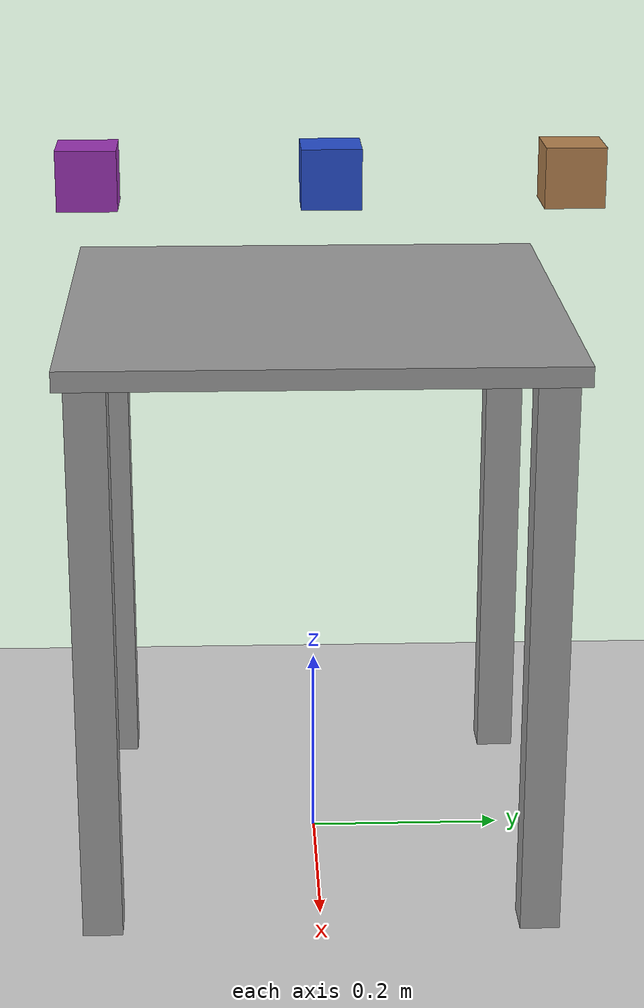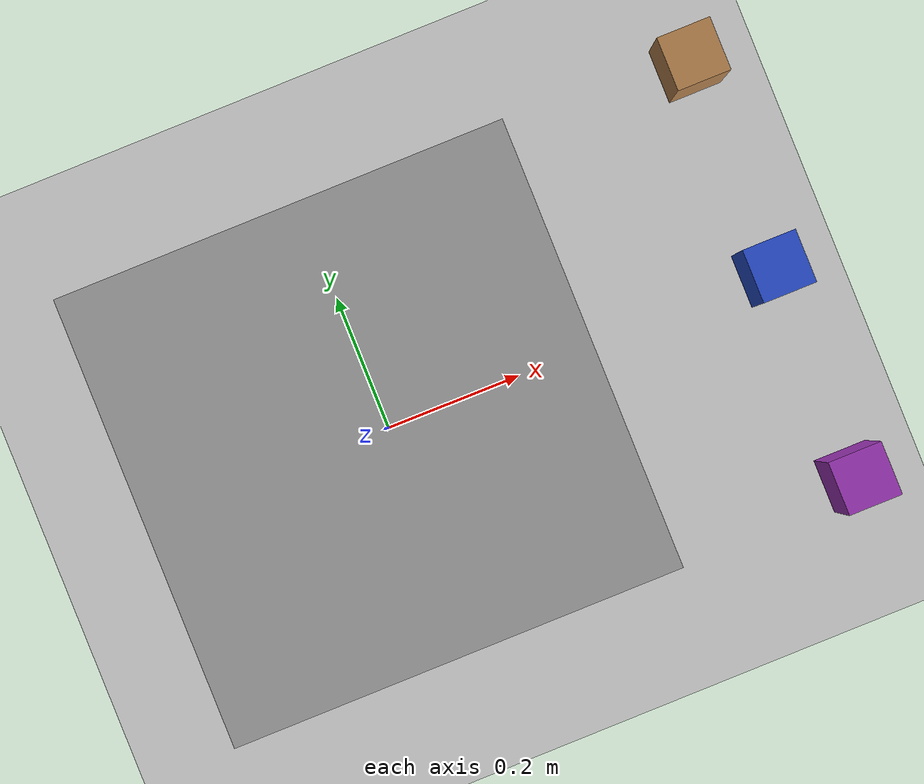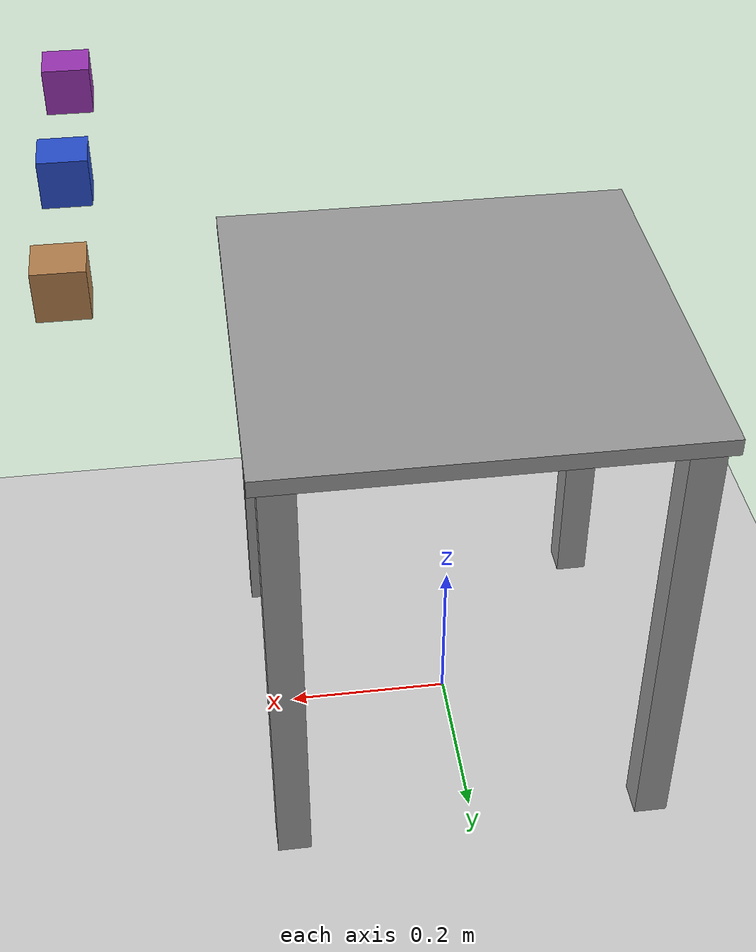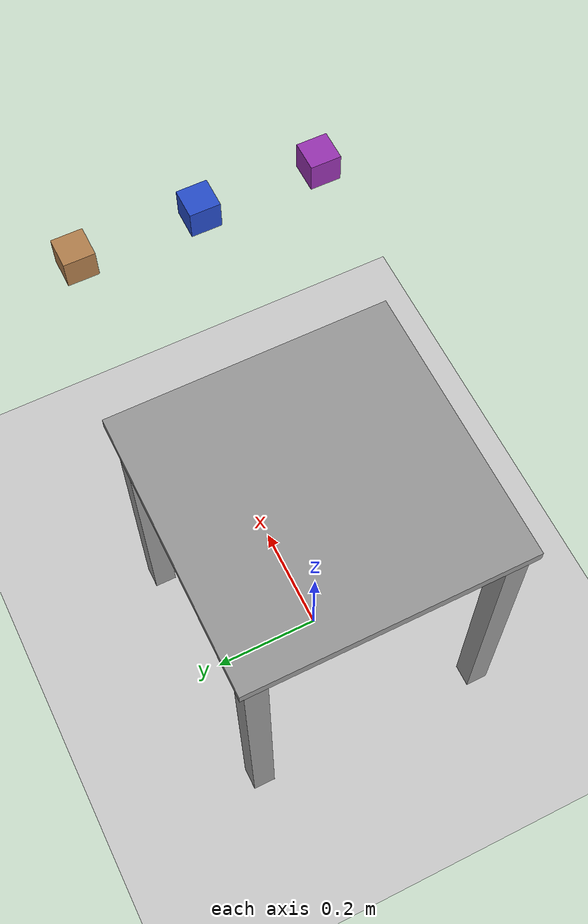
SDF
<sdf version="1.6">
 <world name="ur5_cubes">
  <gravity>0 0 -9.81</gravity>
  <physics name="default_physics" default="0" type="ode">
   <max_step_size>0.001</max_step_size>
   <real_time_factor>1</real_time_factor>
   <real_time_update_rate>1000</real_time_update_rate>
  </physics>
  <scene><ambient>0.4 0.4 0.4 1</ambient><background>0.7 0.7 0.7 1</background><shadows>1</shadows></scene>
  <include><uri>model://sun</uri></include>
  <include><uri>model://ground_plane</uri></include>
  <model name="ur5_base"><include><uri>model://ur5_base</uri></include></model>
  <model name="cube1">
   <pose>0.4 -0.2 0.775 0 0 0</pose>
   <link name="link">
    <pose>0 0 0.025 0 0 0</pose>
    <inertial>
     <mass>0.0565</mass>
     <inertia>
      <ixx>2.3541666666666672e-05</ixx>
      <ixy>0</ixy>
      <ixz>0</ixz>
      <iyy>2.3541666666666672e-05</iyy>
      <iyz>0</iyz>
      <izz>2.3541666666666672e-05</izz>
     </inertia>
    </inertial>
    <collision name="collision">
     <geometry><box><size>0.05 0.05 0.05</size></box></geometry>
     <surface>
      <contact>
       <poissons_ratio>0.347</poissons_ratio>
       <elastic_modulus>8.8e+09</elastic_modulus>
       <ode><kp>100000</kp><kd>1</kd><max_vel>1.0</max_vel><min_depth>0.001</min_depth></ode>
      </contact>
      <friction>
       <torsional>
        <coefficient>1.0</coefficient>
        <use_patch_radius>0</use_patch_radius>
        <surface_radius>0.05</surface_radius>
       </torsional>
      </friction>
     </surface>
    </collision>
    <visual name="visual">
     <geometry><box><size>0.05 0.05 0.05</size></box></geometry>
     <material>
      <script><uri>file://media/materials/scripts/gazebo.material</uri><name>Gazebo/Purple</name></script>
     </material>
    </visual>
   </link>
  </model>
  <model name="cube2">
   <pose>0.4 0 0.775 0 0 0</pose>
   <link name="link">
    <pose>0 0 0.025 0 0 0</pose>
    <inertial>
     <mass>0.0565</mass>
     <inertia>
      <ixx>2.3541666666666672e-05</ixx>
      <ixy>0</ixy>
      <ixz>0</ixz>
      <iyy>2.3541666666666672e-05</iyy>
      <iyz>0</iyz>
      <izz>2.3541666666666672e-05</izz>
     </inertia>
    </inertial>
    <collision name="collision">
     <geometry><box><size>0.05 0.05 0.05</size></box></geometry>
     <surface>
      <contact>
       <poissons_ratio>0.347</poissons_ratio>
       <elastic_modulus>8.8e+09</elastic_modulus>
       <ode><kp>100000</kp><kd>1</kd><max_vel>1.0</max_vel><min_depth>0.001</min_depth></ode>
      </contact>
      <friction>
       <torsional>
        <coefficient>1.0</coefficient>
        <use_patch_radius>0</use_patch_radius>
        <surface_radius>0.05</surface_radius>
       </torsional>
      </friction>
     </surface>
    </collision>
    <visual name="visual">
     <geometry><box><size>0.05 0.05 0.05</size></box></geometry>
     <material>
      <script><uri>file://media/materials/scripts/gazebo.material</uri><name>Gazebo/Blue</name></script>
     </material>
    </visual>
   </link>
  </model>
  <model name="cube3">
   <pose>0.4 0.2 0.775 0 0 0</pose>
   <link name="link">
    <pose>0 0 0.025 0 0 0</pose>
    <inertial>
     <mass>1.0</mass>
     <inertia>
      <ixx>2.3541666666666672e-05</ixx>
      <ixy>0</ixy>
      <ixz>0</ixz>
      <iyy>2.3541666666666672e-05</iyy>
      <iyz>0</iyz>
      <izz>2.3541666666666672e-05</izz>
     </inertia>
    </inertial>
    <collision name="collision">
     <geometry><box><size>0.05 0.05 0.05</size></box></geometry>
     <surface>
      <contact>
       <poissons_ratio>0.347</poissons_ratio>
       <elastic_modulus>8.8e+09</elastic_modulus>
       <ode>
        <kp>100000</kp>
        <kd>1</kd>
        <mu>100.0</mu>
        <mu2>100.0</mu2>
        <max_vel>1.0</max_vel>
        <min_depth>0.001</min_depth>
       </ode>
      </contact>
      <friction>
       <ode><mu>100.0</mu><mu2>100.0</mu2><kp>1000000.0</kp><kd>1.0</kd></ode>
       <torsional>
        <coefficient>1.0</coefficient>
        <use_patch_radius>0</use_patch_radius>
        <surface_radius>0.05</surface_radius>
       </torsional>
      </friction>
     </surface>
    </collision>
    <visual name="visual">
     <geometry><box><size>0.05 0.05 0.05</size></box></geometry>
     <material>
      <script><uri>file://media/materials/scripts/gazebo.material</uri><name>Gazebo/WoodPallet</name></script>
     </material>
    </visual>
   </link>
  </model>
 </world>
</sdf>

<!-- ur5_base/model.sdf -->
<sdf version="1.6">
  <model name="ur5_base">
    <static>true</static>

    <link name="top_plate">
      <pose>0 0 0.58 0 0 0</pose>
      <collision name="top_plate_collision">
        <geometry>
          <box>
            <size>0.5 0.5 0.02</size>
          </box>
        </geometry>
        <surface>
          <contact>
            <collide_bitmask>0x01</collide_bitmask>
          </contact>
        </surface>
      </collision>
      <visual name="top_plate_visual">
        <geometry>
          <box>
            <size>0.5 0.5 0.02</size>
          </box>
        </geometry>
        <material>
          <script>
            <uri>file://media/materials/scripts/gazebo.material</uri>
            <name>Gazebo/Grey</name>
          </script>
        </material>
      </visual>
    </link>
    <link name="leg1">
      <pose>0.22 0.22 0.285 0 0 0</pose>
      <collision name="leg1_collision">
        <geometry>
          <box>
            <size>0.04 0.04 0.57</size>
          </box>
        </geometry>
      </collision>
      <visual name="leg1_visual">
        <geometry>
          <box>
            <size>0.04 0.04 0.57</size>
          </box>
        </geometry>
        <material>
          <script>
            <uri>file://media/materials/scripts/gazebo.material</uri>
            <name>Gazebo/Grey</name>
          </script>
        </material>
      </visual>
    </link>
    <link name="leg2">
      <pose>-0.22 0.22 0.285 0 0 0</pose>
      <collision name="leg2_collision">
        <geometry>
          <box>
            <size>0.04 0.04 0.57</size>
          </box>
        </geometry>
      </collision>
      <visual name="leg2_visual">
        <geometry>
          <box>
            <size>0.04 0.04 0.57</size>
          </box>
        </geometry>
        <material>
          <script>
            <uri>file://media/materials/scripts/gazebo.material</uri>
            <name>Gazebo/Grey</name>
          </script>
        </material>
      </visual>
    </link>
    <link name="leg3">
      <pose>0.22 -0.22 0.285 0 0 0</pose>
      <collision name="leg3_collision">
        <geometry>
          <box>
            <size>0.04 0.04 0.57</size>
          </box>
        </geometry>
      </collision>
      <visual name="leg3_visual">
        <geometry>
          <box>
            <size>0.04 0.04 0.57</size>
          </box>
        </geometry>
        <material>
          <script>
            <uri>file://media/materials/scripts/gazebo.material</uri>
            <name>Gazebo/Grey</name>
          </script>
        </material>
      </visual>
    </link>
    <link name="leg4">
      <pose>-0.22 -0.22 0.285 0 0 0</pose>
      <collision name="leg4_collision">
        <geometry>
          <box>
            <size>0.04 0.04 0.57</size>
          </box>
        </geometry>
      </collision>
      <visual name="leg4_visual">
        <geometry>
          <box>
            <size>0.04 0.04 0.57</size>
          </box>
        </geometry>
        <material>
          <script>
            <uri>file://media/materials/scripts/gazebo.material</uri>
            <name>Gazebo/Grey</name>
          </script>
        </material>
      </visual>
    </link>
  </model>
</sdf>
